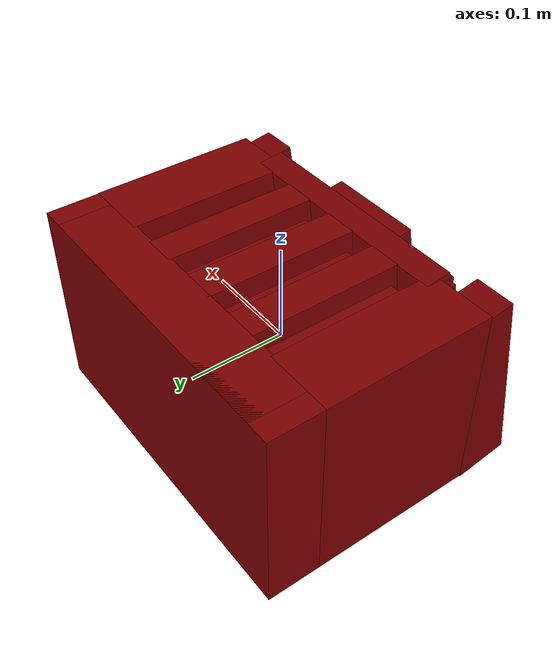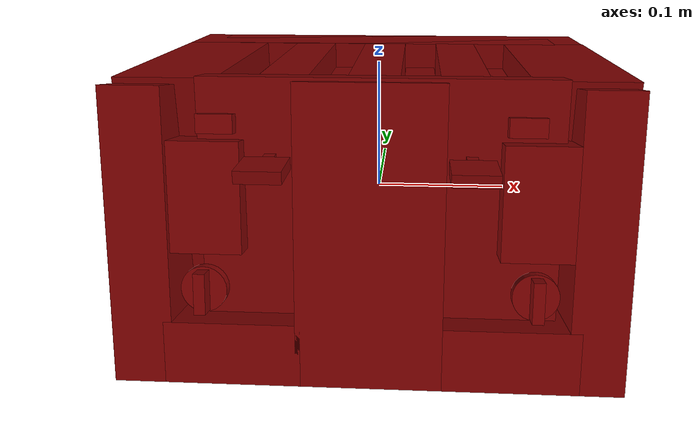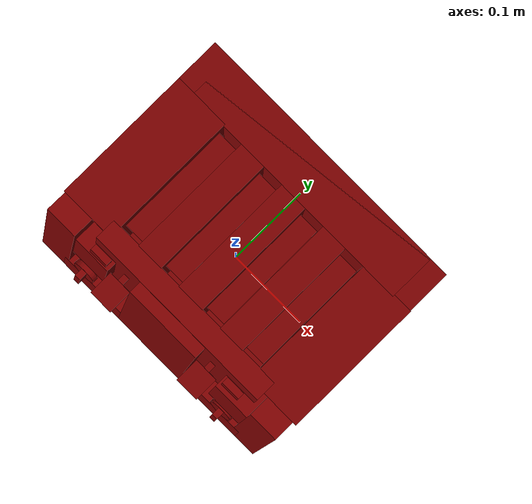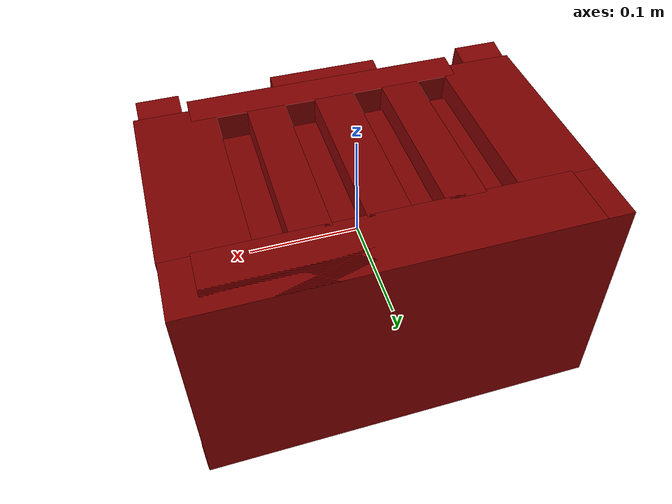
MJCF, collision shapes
<?xml version='1.0' encoding='UTF-8'?>
<mujoco model="model">
  <compiler angle="radian"/>
  <asset>
    <mesh file="visuals/Body001.obj" name="Body001_vis"/>
    <mesh file="visuals/Button001.obj" name="Button001_vis"/>
    <mesh file="visuals/Button002.obj" name="Button002_vis"/>
    <mesh file="visuals/Knob001.obj" name="Knob001_vis"/>
    <mesh file="visuals/Knob002.obj" name="Knob002_vis"/>
    <mesh file="visuals/Lever001.obj" name="Lever001_vis"/>
    <mesh file="visuals/Lever002.obj" name="Lever002_vis"/>
    <texture file="visuals/T_BC001.png" name="Body001_material" type="2d"/>
    <material name="Body001_material" rgba="1 1 1 1.0" texture="Body001_material" shininess="1" specular="1"/>
    <texture file="visuals/T_BC001.png" name="Button001_material" type="2d"/>
    <material name="Button001_material" rgba="1 1 1 1.0" texture="Button001_material" shininess="1" specular="1"/>
    <texture file="visuals/T_BC001.png" name="Button002_material" type="2d"/>
    <material name="Button002_material" rgba="1 1 1 1.0" texture="Button002_material" shininess="1" specular="1"/>
    <texture file="visuals/T_BC001.png" name="Knob001_material" type="2d"/>
    <material name="Knob001_material" rgba="1 1 1 1.0" texture="Knob001_material" shininess="1" specular="1"/>
    <texture file="visuals/T_BC001.png" name="Knob002_material" type="2d"/>
    <material name="Knob002_material" rgba="1 1 1 1.0" texture="Knob002_material" shininess="1" specular="1"/>
    <texture file="visuals/T_BC001.png" name="Lever001_material" type="2d"/>
    <material name="Lever001_material" rgba="1 1 1 1.0" texture="Lever001_material" shininess="1" specular="1"/>
    <texture file="visuals/T_BC001.png" name="Lever002_material" type="2d"/>
    <material name="Lever002_material" rgba="1 1 1 1.0" texture="Lever002_material" shininess="1" specular="1"/>
  </asset>
  <default>
    <default class="visual">
      <geom conaffinity="0" contype="0" group="1" type="mesh"/>
    </default>
    <default class="collision">
      <geom group="0" rgba="0.5 0 0 0.5"/>
    </default>
    <default class="spawn">
      <geom group="0" rgba="1 1 1 0.5" contype="0" conaffinity="0"/>
      <site group="0" rgba="1 1 1 0.5"/>
    </default>
    <default class="region">
      <geom group="1" conaffinity="0" contype="0" rgba="0 1 0 0"/>
    </default>
  </default>
  <worldbody>
    <body>
      <body name="object">
        <geom mesh="Body001_vis" type="mesh" solimp="0.998 0.998 0.001" solref="0.001 1" density="100" friction="0.95 0.3 0.1" class="visual" material="Body001_material"/>
        <geom class="collision" type="box" pos="0.005864 -0.091764 0.002966" size="0.12068044394254684 0.01329335942864418 0.10116154700517654" quat="0.9983316659927368 -0.05774020031094551 -0.0 0.0"/>
        <geom class="collision" type="box" pos="-0.139388 0.002271 0.000958" size="0.03474479541182518 0.08551330864429474 0.10106659680604935" quat="1.0 0.0 0.0 0.0"/>
        <geom class="collision" type="box" pos="-0.000414 0.114326 0.000958" size="0.17371876537799835 0.027405505999922752 0.10106659680604935" quat="1.0 0.0 0.0 0.0"/>
        <geom class="collision" type="box" pos="-0.000827 0.113434 0.000958" size="0.15057894587516785 0.02829725481569767 0.10106659680604935" quat="1.0 0.0 0.0 0.0"/>
        <geom class="collision" type="box" pos="0.139612 0.002271 0.000958" size="0.034438926726579666 0.08551330864429474 0.10106659680604935" quat="1.0 0.0 0.0 0.0"/>
        <geom class="collision" type="box" pos="0.061946 0.008871 0.000958" size="0.016589537262916565 0.07891321182250977 0.10106659680604935" quat="1.0 0.0 0.0 0.0"/>
        <geom class="collision" type="box" pos="0.000705 0.008871 0.000958" size="0.01772632636129856 0.07891321182250977 0.10106659680604935" quat="1.0 0.0 0.0 0.0"/>
        <geom class="collision" type="box" pos="-0.060726 0.008871 0.000958" size="0.016954509541392326 0.07891321182250977 0.10106659680604935" quat="1.0 0.0 0.0 0.0"/>
        <geom class="collision" type="box" pos="0.004063 0.032068 -0.084425" size="0.16998794674873352 0.10637714713811874 0.019420022144913673" quat="1.0 0.0 0.0 0.0"/>
        <geom class="collision" type="box" pos="-0.152404 -0.097798 -0.001305" size="0.02033948339521885 0.02756650559604168 0.10008889436721802" quat="0.9968189597129822 -0.07969891279935837 1.1240806790636566e-19 -1.4059238353779242e-18"/>
        <geom class="collision" type="box" pos="0.150923 -0.097798 -0.001305" size="0.01866787299513817 0.02756650559604168 0.10008889436721802" quat="0.9968189597129822 -0.07969891279935837 1.1240806790636566e-19 -1.4059238353779242e-18"/>
        <geom class="collision" type="box" pos="0.000074 -0.116366 0.003306" size="0.04902131110429764 0.008501855656504631 0.10169165581464767" quat="0.9968189597129822 -0.07969891279935837 1.1240806790636566e-19 -1.4059238353779242e-18"/>
        <geom class="collision" type="box" pos="-0.091714 -0.110277 -0.078845" size="0.04615263268351555 0.02756650559604168 0.021551545709371567" quat="0.9968189597129822 -0.07969891279935837 1.1240806790636566e-19 -1.4059238353779242e-18"/>
        <geom class="collision" type="box" pos="0.093960 -0.110277 -0.078845" size="0.04615263268351555 0.02756650559604168 0.021551545709371567" quat="0.9968189597129822 -0.07969891279935837 1.1240806790636566e-19 -1.4059238353779242e-18"/>
        <geom class="collision" type="box" pos="-0.109999 -0.099766 0.026760" size="0.026092931628227234 0.01714228093624115 0.037459731101989746" quat="0.9968189597129822 -0.07969891279935837 1.1240806790636566e-19 -1.4059238353779242e-18"/>
        <geom class="collision" type="box" pos="0.108754 -0.098463 0.026844" size="0.023988958448171616 0.02243715152144432 0.037749990820884705" quat="0.9968189597129822 -0.07969891279935837 1.1240806790636566e-19 -1.4059238353779242e-18"/>
        <body name="Button001">
          <joint axis="0.0 0.9848077893257141 -0.1736481934785843" pos="-0.099544 -0.103566 0.076228" limited="true" name="Button001_joint" range="0.0 0.002" type="slide" damping="1" frictionloss="1" armature=".01" stiffness="0.05" springref="-0.1"/>
          <geom mesh="Button001_vis" type="mesh" solimp="0.998 0.998 0.001" solref="0.001 1" density="100" friction="0.95 0.3 0.1" class="visual" material="Button001_material"/>
          <geom class="collision" type="box" pos="-0.099955 -0.103711 0.076456" size="0.012103825807571411 0.0042469920590519905 0.006305795628577471" quat="0.9961947202682495 -0.08715574443340302 0.0 0.0"/>
        </body>
        <body name="Button002">
          <joint axis="0.0 0.9848077893257141 -0.1736481934785843" pos="0.099641 -0.103561 0.076183" limited="true" name="Button002_joint" range="0.0 0.002" type="slide" damping="1" frictionloss="1" armature=".01" stiffness="0.05" springref="-0.1"/>
          <geom mesh="Button002_vis" type="mesh" solimp="0.998 0.998 0.001" solref="0.001 1" density="100" friction="0.95 0.3 0.1" class="visual" material="Button002_material"/>
          <geom class="collision" type="box" pos="0.099680 -0.103711 0.076456" size="0.012103825807571411 0.0042469920590519905 0.006305795628577471" quat="0.9961947202682495 -0.08715574443340302 0.0 0.0"/>
        </body>
        <body name="Knob001">
          <joint axis="0.0 0.9848077893257141 -0.1736481934785843" pos="-0.108220 -0.128575 -0.029211" limited="true" name="Knob001_joint" range="0.0 5.497787143782138" type="hinge" damping="0.05" armature="0.001" springref="-0.01"/>
          <geom mesh="Knob001_vis" type="mesh" solimp="0.998 0.998 0.001" solref="0.001 1" density="100" friction="0.95 0.3 0.1" class="visual" material="Knob001_material"/>
          <geom class="collision" type="cylinder" pos="-0.108259 -0.128431 -0.029146" size="0.015343800187110901 0.00347314914688468" quat="0.6425108313560486 -0.7662765979766846 1.7014759769591977e-16 1.5647564081481731e-23"/>
          <geom class="collision" type="box" pos="-0.108195 -0.136972 -0.027975" size="0.0037898283917456865 0.005474586505442858 0.013624683022499084" quat="0.9958509206771851 -0.09099959582090378 -2.020596930239011e-17 1.4671993407845521e-24"/>
        </body>
        <body name="Knob002">
          <joint axis="0.0 0.9848077893257141 -0.1736481934785843" pos="0.108306 -0.128508 -0.029305" limited="true" name="Knob002_joint" range="0.0 5.497787143782138" type="hinge" damping="0.05" armature="0.001" springref="-0.01"/>
          <geom mesh="Knob002_vis" type="mesh" solimp="0.998 0.998 0.001" solref="0.001 1" density="100" friction="0.95 0.3 0.1" class="visual" material="Knob002_material"/>
          <geom class="collision" type="box" pos="0.108220 -0.137040 -0.027963" size="0.0037898283917456865 0.005723741836845875 0.013624683022499084" quat="0.9958509206771851 -0.09099959582090378 -2.020596930239011e-17 1.4671993407845521e-24"/>
          <geom class="collision" type="cylinder" pos="0.108155 -0.128431 -0.029146" size="0.015343800187110901 0.00347314914688468" quat="0.6425108313560486 -0.7662765979766846 1.7014759769591977e-16 1.5647564081481731e-23"/>
        </body>
        <body name="Lever001">
          <joint axis="0.0 -0.1736481934785843 -0.9848077893257141" pos="-0.066174 -0.113658 0.052015" limited="true" name="Lever001_joint" range="0.0 0.085" type="slide" damping="1" frictionloss="1" armature=".01" stiffness="1" springref="-1"/>
          <geom mesh="Lever001_vis" type="mesh" solimp="0.998 0.998 0.001" solref="0.001 1" density="100" friction="0.95 0.3 0.1" class="visual" material="Lever001_material"/>
          <geom class="collision" type="box" pos="-0.066265 -0.124472 0.052263" size="0.015014486387372017 0.015014486387372017 0.0041434005834162235" quat="1.0 0.0 0.0 0.0" name="sideL_lever_knob"/>
          <geom class="collision" type="box" pos="-0.066129 -0.105243 0.053615" size="0.0038251569494605064 0.0053746867924928665 0.001966531155630946" quat="1.0 0.0 0.0 0.0"/>
          <geom class="collision" type="box" pos="-0.030504 0.008184 0.080562" size="0.012500000186264515 0.06999997794628143 0.0015526621136814356" quat="1.0 0.0 0.0 0.0" name="sideL_slotR_floor"/>
          <geom class="collision" type="box" pos="-0.091229 0.008184 0.080562" size="0.012499996460974216 0.06999998539686203 0.0015526621136814356" quat="1.0 0.0 0.0 0.0" name="sideL_slotL_floor"/>
        </body>
        <body name="Lever002">
          <joint axis="0.0 -0.1736481934785843 -0.9848077893257141" pos="0.066072 -0.113658 0.052015" limited="true" name="Lever002_joint" range="0.0 0.085" type="slide" damping="1" frictionloss="1" armature=".01" stiffness="1" springref="-1"/>
          <geom mesh="Lever002_vis" type="mesh" solimp="0.998 0.998 0.001" solref="0.001 1" density="100" friction="0.95 0.3 0.1" class="visual" material="Lever002_material"/>
          <geom class="collision" type="box" pos="0.065907 -0.105243 0.053615" size="0.0038251569494605064 0.0053746867924928665 0.001966531155630946" quat="1.0 0.0 0.0 0.0"/>
          <geom class="collision" type="box" pos="0.065772 -0.124472 0.052263" size="0.015014486387372017 0.015014486387372017 0.0041434005834162235" quat="1.0 0.0 0.0 0.0" name="sideR_lever_knob"/>
          <geom class="collision" type="box" pos="0.091596 0.008184 0.080562" size="0.01249998901039362 0.07000000029802322 0.0015526621136814356" quat="1.0 0.0 0.0 0.0" name="sideR_slotR_floor"/>
          <geom class="collision" type="box" pos="0.031798 0.008184 0.080562" size="0.01249999925494194 0.07000000029802322 0.0015526621136814356" quat="1.0 0.0 0.0 0.0" name="sideR_slotL_floor"/>
        </body>
        <geom class="region" name="reg_main" type="box" pos="0.00013499999999999623 0.005583500000000005 -0.00035400000000000015" size="0.171955 0.13907750000000002 0.101742"/>
      </body>
    </body>
  </worldbody>
  <actuator>
    <motor name="Button001_joint_actuator" joint="Button001_joint" gear="0.5"/>
    <motor name="Button002_joint_actuator" joint="Button002_joint" gear="0.5"/>
    <motor name="Knob001_joint_actuator" joint="Knob001_joint" gear="0.5"/>
    <motor name="Knob002_joint_actuator" joint="Knob002_joint" gear="0.5"/>
    <motor name="Lever001_joint_actuator" joint="Lever001_joint" gear="0.5"/>
    <motor name="Lever002_joint_actuator" joint="Lever002_joint" gear="0.5"/>
  </actuator>
</mujoco>
